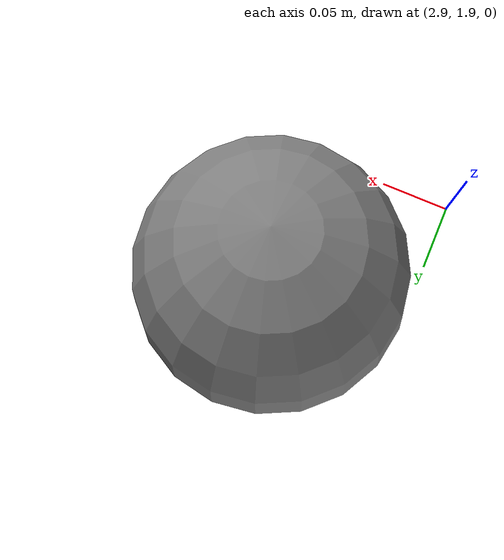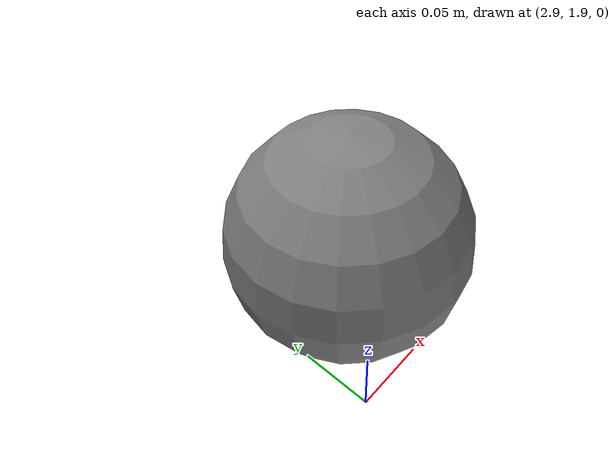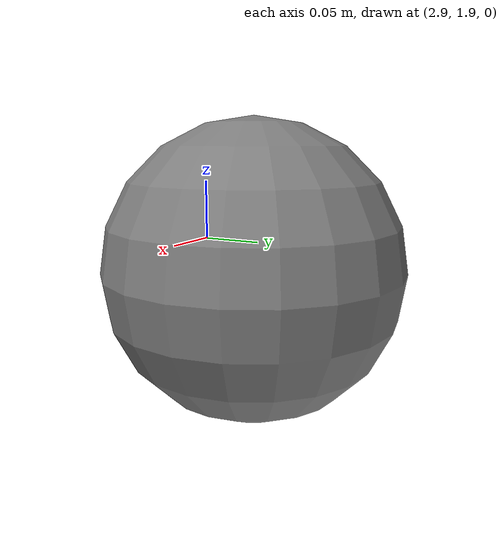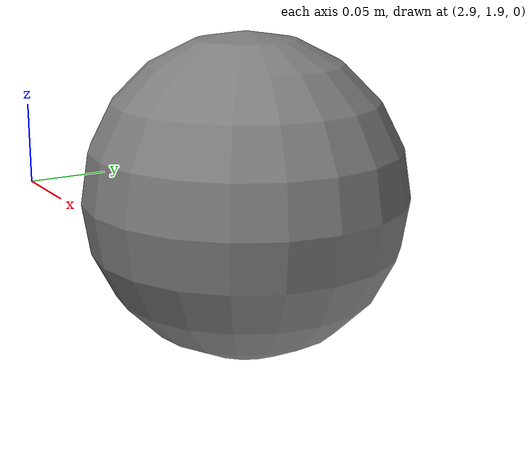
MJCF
<mujoco>
                <worldbody>
                    <body name="b">
                        <frame pos="3 0 0">
                            <geom type="sphere" size="0.1" pos="0 2 0"/>
                        </frame>
                    </body>
                </worldbody>
            </mujoco>
